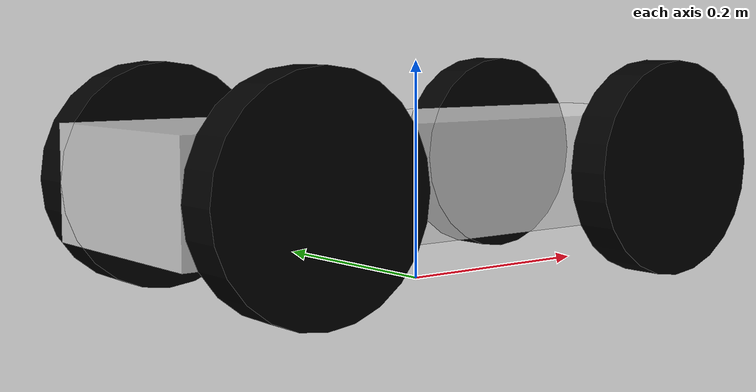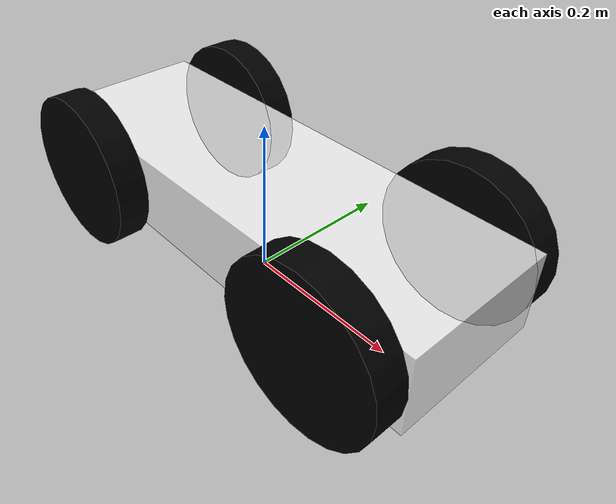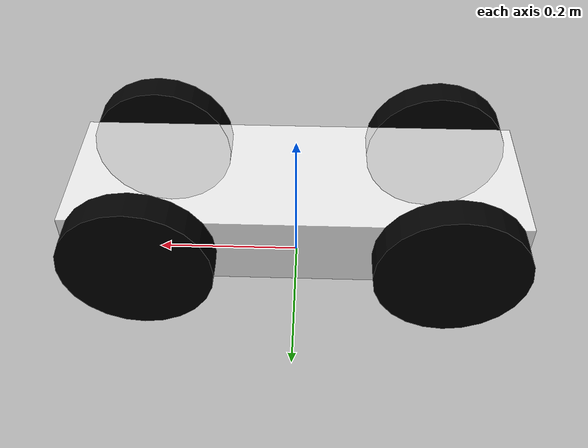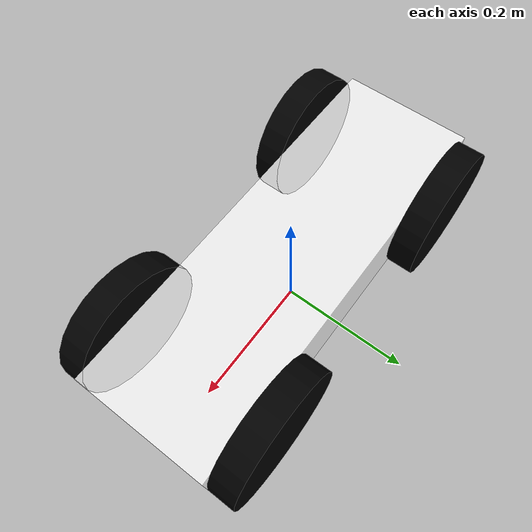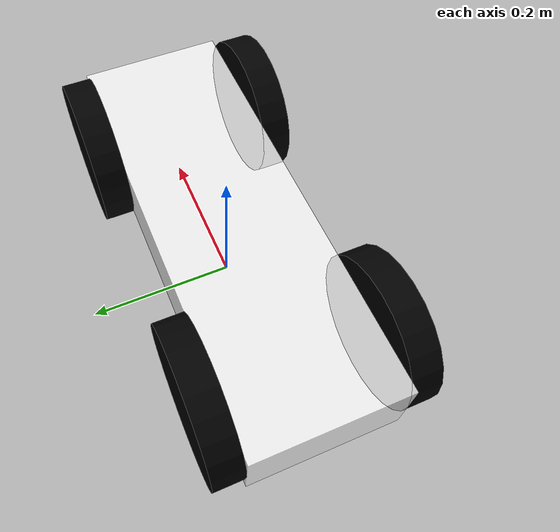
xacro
<?xml version="1.0"?>
<robot xmlns:xacro="http://www.ros.org/wiki/xacro"  name="omegabot">

    <xacro:include filename="omegabot_core.xacro"/>

</robot>

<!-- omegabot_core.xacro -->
<omegabot xmlns:xacro="http://www.ros.org/wiki/xacro" name="omegabot">

<xacro:include filename="inertial_macros.xacro"/>

<!-- COLORS -->

<material name="white">
    <color rgba="1 1 1 0.8"/>
</material>

<material name="black">
    <color rgba="0 0 0 1"/>
</material>

<!-- LINKS -->

<link name="base_link"></link>

<link name="chassis">
    <visual>
        <origin xyz="0 0 0" rpy="0 0 0"/>
        <geometry>
            <box size="0.6 0.2 0.1"/>
        </geometry>
        <material name="white"/>
    </visual>
    <collision>
        <origin xyz="0 0 0" rpy="0 0 0"/>
        <geometry>
            <box size="0.6 0.2 0.1"/>
        </geometry>
    </collision>
    <xacro:inertial_box mass="0.5" x ="0.6" y="0.2" z="0.1">
    	<origin xyz="0 0 0" rpy="0 0 0"/>
    </xacro:inertial_box>
</link>

<link name="left_forward_wheel">
    <visual>
        <origin xyz="0 0 0" rpy="0 0 0"/>
        <geometry>
            <cylinder radius="0.1" length="0.04"/>
        </geometry>
        <material name="black"/>
    </visual>
    <collision>
        <origin xyz="0 0 0" rpy="0 0 0"/>
        <geometry>
            <cylinder radius="0.1" length="0.04"/>
        </geometry>
    </collision>
    <xacro:inertial_cylinder mass="0.1" length="0.04" radius="0.1">
    	<origin xyz="0 0 0" rpy="0 0 0"/>
    </xacro:inertial_cylinder>
</link>

<link name="left_backward_wheel">
    <visual>
        <origin xyz="0 0 0" rpy="0 0 0"/>
        <geometry>
            <cylinder radius="0.1" length="0.04"/>
        </geometry>
        <material name="black"/>
    </visual>
    <collision>
        <origin xyz="0 0 0" rpy="0 0 0"/>
        <geometry>
            <cylinder radius="0.1" length="0.04"/>
        </geometry>
    </collision>
    <xacro:inertial_cylinder mass="0.1" length="0.04" radius="0.1">
    	<origin xyz="0 0 0" rpy="0 0 0"/>
    </xacro:inertial_cylinder>
</link>

<link name="right_forward_wheel">
    <visual>
        <origin xyz="0 0 0" rpy="0 0 0"/>
        <geometry>
            <cylinder radius="0.1" length="0.04"/>
        </geometry>
        <material name="black"/>
    </visual>
    <collision>
        <origin xyz="0 0 0" rpy="0 0 0"/>
        <geometry>
            <cylinder radius="0.1" length="0.04"/>
        </geometry>
    </collision>
    <xacro:inertial_cylinder mass="0.1" length="0.04" radius="0.1">
    	<origin xyz="0 0 0" rpy="0 0 0"/>
    </xacro:inertial_cylinder>
</link>

<link name="right_backward_wheel">
    <visual>
        <origin xyz="0 0 0" rpy="0 0 0"/>
        <geometry>
            <cylinder radius="0.1" length="0.04"/>
        </geometry>
        <material name="black"/>
    </visual>
    <collision>
        <origin xyz="0 0 0" rpy="0 0 0"/>
        <geometry>
            <cylinder radius="0.1" length="0.04"/>
        </geometry>
    </collision>
    <xacro:inertial_cylinder mass="0.1" length="0.04" radius="0.1">
    	<origin xyz="0 0 0" rpy="0 0 0"/>
    </xacro:inertial_cylinder>
</link>

<!-- JOINTS -->

<joint name="chassis_joint" type="fixed">
    <parent link="base_link"/>
    <child link="chassis"/>
    <origin xyz="0 0 0.1"/>
</joint>

<joint name="left_forward_wheel_joint" type="continuous">
    <parent link="chassis"/>
    <child link="left_forward_wheel"/>
    <origin xyz="0.2 0.12 0" rpy="-${pi/2} 0 0"/>
    <axis xyz="0 0 1"/>
</joint>

<joint name="left_backward_wheel_joint" type="continuous">
    <parent link="chassis"/>
    <child link="left_backward_wheel"/>
    <origin xyz="-0.2 0.12 0" rpy="-${pi/2} 0 0"/>
    <axis xyz="0 0 1"/>
</joint>

<joint name="right_forward_wheel_joint" type="continuous">
    <parent link="chassis"/>
    <child link="right_forward_wheel"/>
    <origin xyz="0.2 -0.12 0" rpy="${pi/2} 0 0"/>
    <axis xyz="0 0 1"/>
</joint>

<joint name="right_backward_wheel_joint" type="continuous">
    <parent link="chassis"/>
    <child link="right_backward_wheel"/>
    <origin xyz="-0.2 -0.12 0" rpy="${pi/2} 0 0"/>
    <axis xyz="0 0 1"/>
</joint>

</omegabot>
